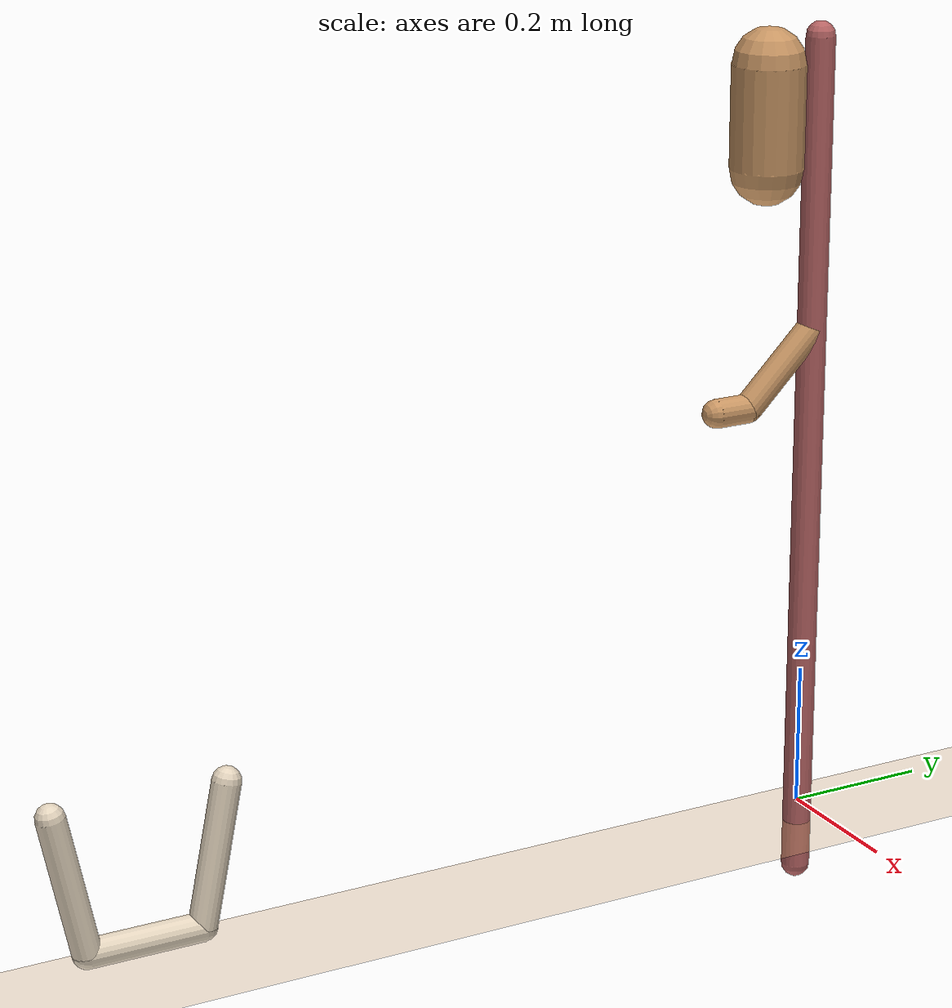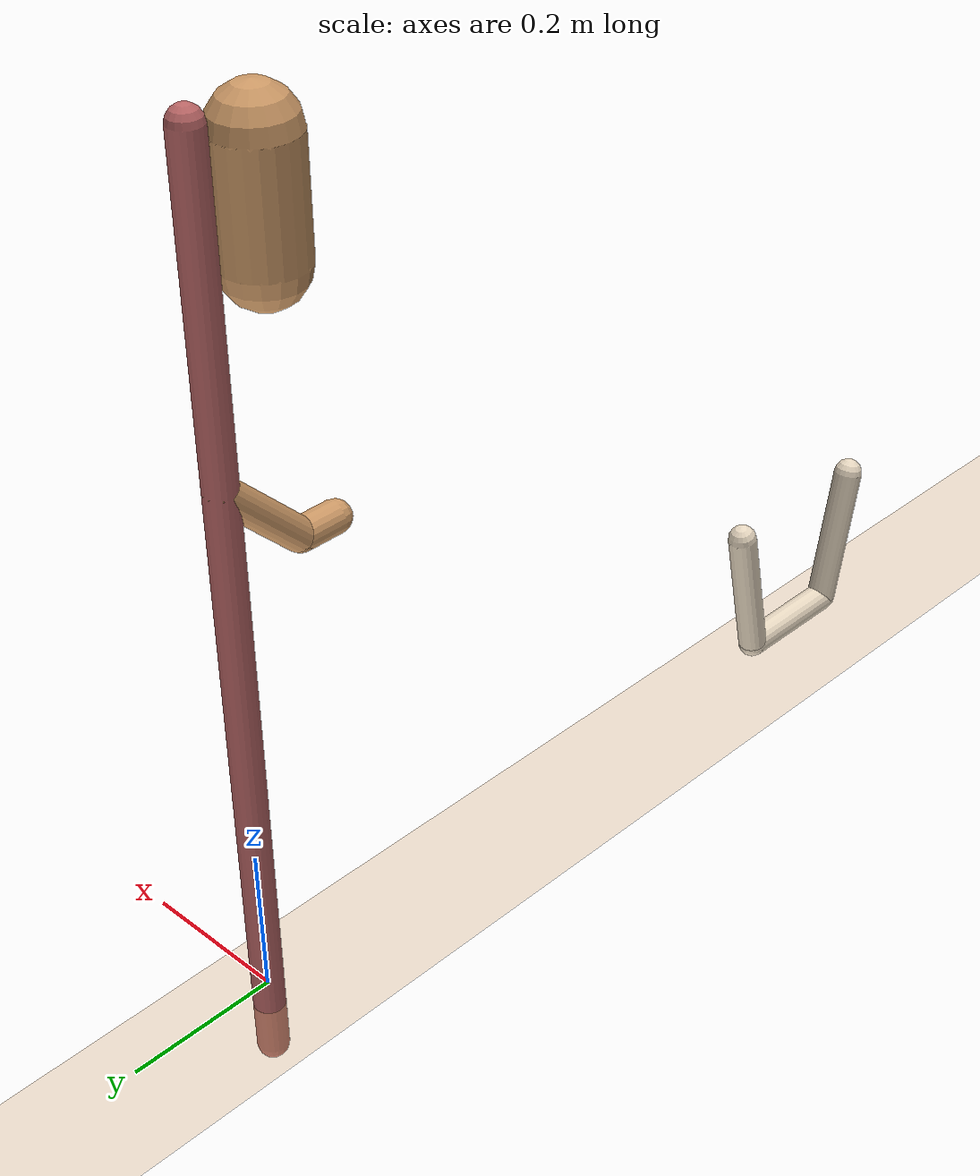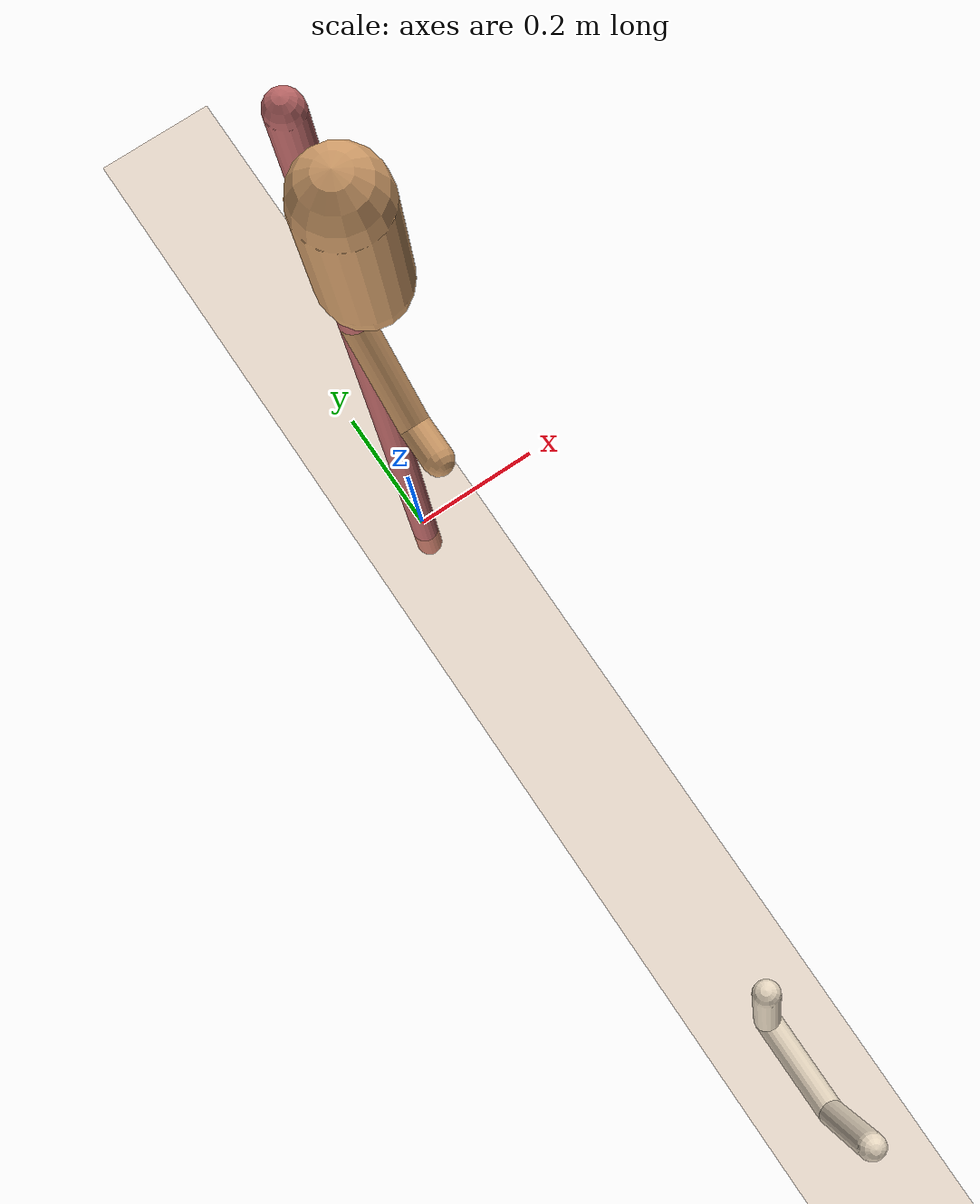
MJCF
<!-- Author: vikash@openai.com-->
<mujoco model='tosser-v1.5'>
    <compiler inertiafromgeom='auto' angle='radian'/>

    <default>
        <joint limited='true' damping='1' armature='0'/>
        <geom contype='1' conaffinity='1' condim='3' rgba='0.8 0.6 .4 1'
        	margin="0.001" solref=".02 1" solimp=".8 .8 .01" material="geom"/>
        <motor ctrlrange='-1 1'  ctrllimited='true'/>
    </default>

    <option timestep='0.002' iterations="50" solver="PGS">
        <flag energy="enable"/>
    </option>

    <visual>
        <map fogstart="3" fogend="5" force="0.1" znear="0.1" zfar="10"/>
        <quality shadowsize="2048"/>
        <global offwidth="800" offheight="800"/>
    </visual>
	<statistic extent="1" />

    <asset>
		<texture type="skybox" builtin="gradient" width="128" height="128" rgb1=".4 .4 .8"
            rgb2="0 0 0"/>
        <texture name="texgeom" type="cube" builtin="flat" mark="cross" width="127" height="1278"
            rgb1="0.8 0.6 0.4" rgb2="0.8 0.6 0.4" markrgb="1 1 1" random="0.01"/>
        <texture name="texplane" type="2d" builtin="checker" rgb1=".2 .3 .4" rgb2=".1 0.15 0.2"
            width="512" height="512"/>
		<texture name="texobj" type="2d" builtin="checker" rgb1=".9 .5 .1" rgb2=".3 .9 .1"
            width="512" height="512"/>

		<material name='lbl_mat' texuniform="true" emission="1000" specular="0" shininess="0" reflectance="0"/>
		<material name='MatPlane' reflectance='0' texture="texplane" texrepeat="1 1" texuniform="true"/>
		<material name='MatObj' reflectance='0' texture="texobj" texrepeat="1 1" texuniform="true"/>
        <material name='geom' texuniform="true"/>
	</asset>

    <worldbody>
        <light directional='false' diffuse='.8 .8 .8' specular='0.3 0.3 0.3' pos='0 0 4.0' dir='0 -.15 -1'/>
        <light directional='false' diffuse='.8 .8 .8' specular='0.3 0.3 0.3' pos='0 -2 4.0' dir='0 .15 -1'/>
		<geom name='floor' pos='0 -1 -0.03' size='.1 3 .125' type='plane' material="MatPlane" condim='3'/>

		<camera name="cam" mode="fixed" pos="1.7 -1 0.65" euler="1.57 1.57 0" fovy="45"/>

		<body name='basket0' pos='0 -1 0'>
			<geom name="b0" pos='0 -.1 .12' type='capsule' size='.02 .1' rgba='0.91 0.85 0.76 1' condim='1' mass=".6" euler='.2 0 0'/>
			<geom name="b1" pos='0  .1 .12' type='capsule' size='.02 .1' rgba='0.91 0.85 0.76 1' condim='1' mass=".6" euler='-.2 0 0'/>
			<geom name="b2" pos='0  0 .02' type='capsule' size='.02 .08' rgba='0.91 0.85 0.76 1' condim='1' mass=".8" euler='1.57 0 0'/>
			<site name='t0' pos='0 0 .17' type='box' group='4' size='.05 .05 .1' rgba="0 1 0 0.3"/>
			<joint name='movey' type='slide' axis='0 1 0' limited='true' range="-.75 .75" armature="0"/>
		</body>

		<body name='obj' pos='0 -.08 1'>

			<geom name='gobj' type='capsule' size='.05 .07' pos="0 0 0.0" mass="1.8" material="MatObj" />

			<joint name='bally' type='slide' axis='0 1 0' limited='false' damping='.01'/>
			<joint name='ballz' type='slide' axis='0 0 1' limited="false" damping='.01'/>
			<joint name='ballx' type='hinge' axis='1 0 0' limited='false' damping='.01'/>
		</body>

		<body name='wall' pos='0 0 0'>
			<geom name='wall' pos='0 0 .5' size='.02 .6' type='capsule' rgba='.73 .4 .4 1'/>
			<body name='hand' pos='0 0 0'>
				<geom name='palm' type='capsule' size='.02' fromto='0 0 .7 0 -.1 .6'/>
				<geom name='finger' type='capsule' size='.02' fromto='0 -.1 .6 0 -.15 .6'/>
				<joint name='wr_js' type='slide' pos='0 0 .7' axis='0 0 1' range='-.6 .25' damping='10'/>
				<joint name='wr_jr' type='hinge' pos='0 0 .7' axis='1 0 0' range='-1.57 0.8'/>
			</body>
		</body>
	</worldbody>

    <actuator>
		<motor name='catcher_y' gear='20' joint='movey'/>
		<motor name='a1' gear='35' joint='wr_js'/>
		<motor name='a2' gear='35' joint='wr_jr'/>
    </actuator>

	<sensor>
		<jointpos name="S_move_pos"	joint="movey"/>
		<jointvel name="S_move_vel"	joint="movey"/>

		<jointpos name="pos_by"	joint="bally"/>
		<jointpos name="pos_bz"	joint="ballz"/>
		<jointpos name="pos_bx"	joint="ballx"/>

		<jointvel name="vel_by"	joint="bally"/>
		<jointvel name="vel_bz"	joint="ballz"/>
		<jointvel name="vel_bx"	joint="ballx"/>

		<jointpos name="wr_x"	joint="wr_js"/>
		<jointpos name="wr_t"	joint="wr_jr"/>

		<jointvel name="wr_v"	joint="wr_js"/>
		<jointvel name="wr_w"	joint="wr_jr"/>

		<touch name="s_t1"	site="t0"/>
	</sensor>

</mujoco>
